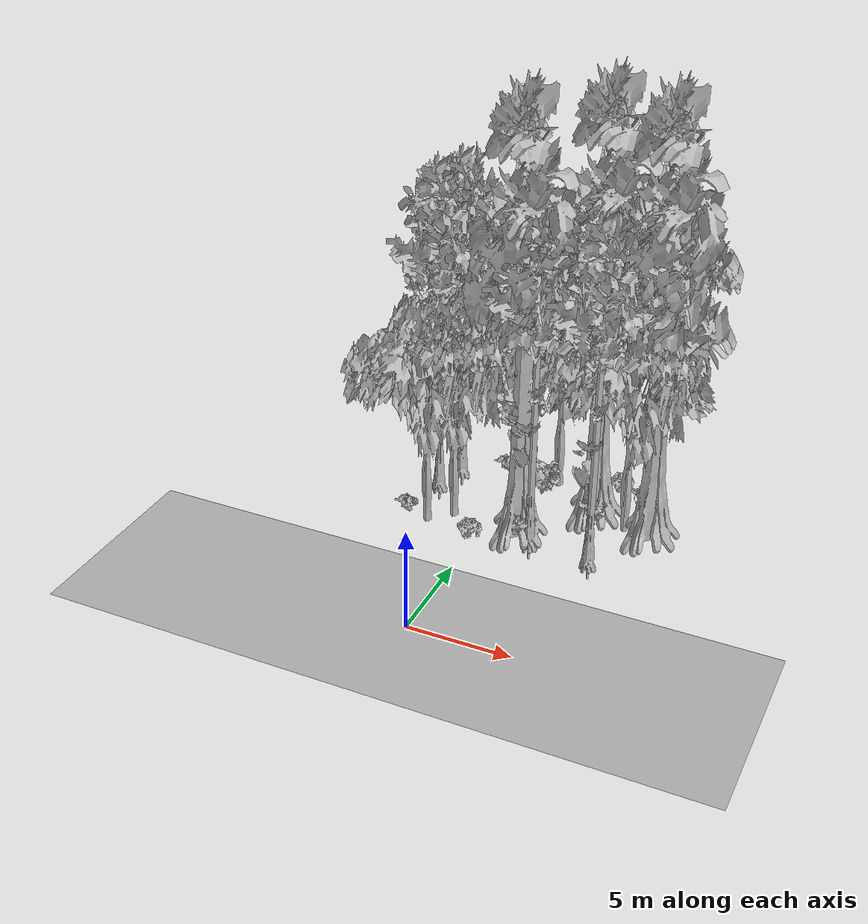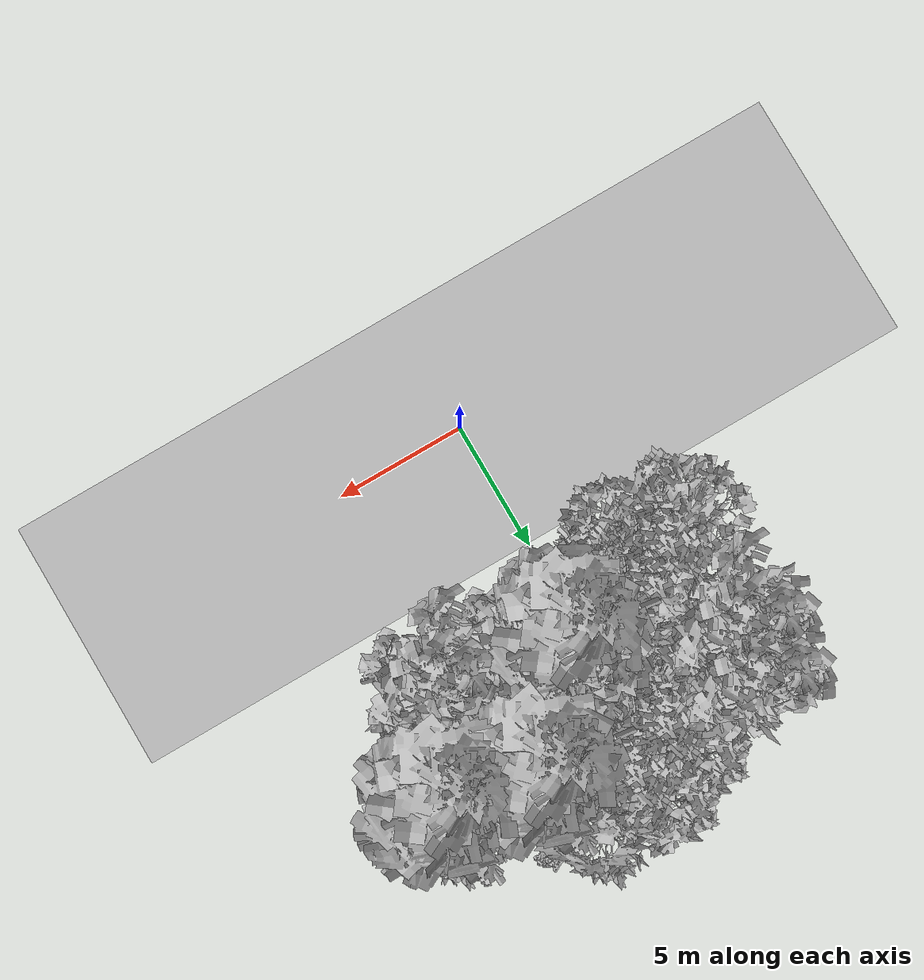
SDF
<sdf version="1.7">
 <world name="default">
  <model name="ground_plane">
   <static>1</static>
   <link name="link">
    <collision name="collision">
     <geometry><plane><normal>0 0 1</normal><size>100 100</size></plane></geometry>
     <surface><contact><ode><min_depth>0.01</min_depth><max_vel>0</max_vel></ode></contact></surface>
    </collision>
    <visual name="grass">
     <cast_shadows>0</cast_shadows>
     <geometry>
      <mesh>
       <scale>0.5814285714285714 0.18142857142857144 0.1</scale>
       <uri>file://grass_plane/meshes/grass_plane.dae</uri>
      </mesh>
     </geometry>
    </visual>
   </link>
  </model>
  <model name="Tree 6">
   <static>1</static>
   <pose>6.165143810758373 11.492331317376358 0 1.57079 -0 0</pose>
   <link name="link">
    <collision name="collision">
     <geometry><mesh><scale>3.5 5 3.5</scale><uri>model://tree_2/meshes/tree_2.obj</uri></mesh></geometry>
    </collision>
    <visual name="visual">
     <geometry><mesh><scale>3.5 5 3.5</scale><uri>model://tree_2/meshes/tree_2.obj</uri></mesh></geometry>
    </visual>
   </link>
  </model>
  <model name="Tree 50">
   <static>1</static>
   <pose>0.19396131883137713 13.168286065146322 0 1.57079 -0 0</pose>
   <link name="link">
    <collision name="collision">
     <geometry><mesh><scale>3.5 5 3.5</scale><uri>model://tree_2/meshes/tree_2.obj</uri></mesh></geometry>
    </collision>
    <visual name="visual">
     <geometry><mesh><scale>3.5 5 3.5</scale><uri>model://tree_2/meshes/tree_2.obj</uri></mesh></geometry>
    </visual>
   </link>
  </model>
  <model name="Tree 56">
   <static>1</static>
   <pose>1.5719434874022795 9.17597408883221 0 1.57079 -0 0</pose>
   <link name="link">
    <collision name="collision">
     <geometry><mesh><scale>3.5 5 3.5</scale><uri>model://tree_4/meshes/tree_4.obj</uri></mesh></geometry>
    </collision>
    <visual name="visual">
     <geometry><mesh><scale>3.5 5 3.5</scale><uri>model://tree_4/meshes/tree_4.obj</uri></mesh></geometry>
    </visual>
   </link>
  </model>
  <model name="Tree 111">
   <static>1</static>
   <pose>4.378610820480233 12.344323079256 0 1.57079 -0 0</pose>
   <link name="link">
    <collision name="collision">
     <geometry><mesh><scale>3.5 5 3.5</scale><uri>model://tree_4/meshes/tree_4.obj</uri></mesh></geometry>
    </collision>
    <visual name="visual">
     <geometry><mesh><scale>3.5 5 3.5</scale><uri>model://tree_4/meshes/tree_4.obj</uri></mesh></geometry>
    </visual>
   </link>
  </model>
  <model name="Tree 117">
   <static>1</static>
   <pose>-2.8668720067677143 8.153926648581976 0 1.57079 -0 0</pose>
   <link name="link">
    <collision name="collision">
     <geometry><mesh><scale>3.5 5 3.5</scale><uri>model://tree_2/meshes/tree_2.obj</uri></mesh></geometry>
    </collision>
    <visual name="visual">
     <geometry><mesh><scale>3.5 5 3.5</scale><uri>model://tree_2/meshes/tree_2.obj</uri></mesh></geometry>
    </visual>
   </link>
  </model>
  <model name="Tree 160">
   <static>1</static>
   <pose>1.8239788463064386 14.008226290433981 0 1.57079 -0 0</pose>
   <link name="link">
    <collision name="collision">
     <geometry><mesh><scale>3.5 5 3.5</scale><uri>model://tree_2/meshes/tree_2.obj</uri></mesh></geometry>
    </collision>
    <visual name="visual">
     <geometry><mesh><scale>3.5 5 3.5</scale><uri>model://tree_2/meshes/tree_2.obj</uri></mesh></geometry>
    </visual>
   </link>
  </model>
  <model name="Tree 183">
   <static>1</static>
   <pose>2.414252139361423 8.638411806548078 0 1.57079 -0 0</pose>
   <link name="link">
    <collision name="collision">
     <geometry><mesh><scale>3.5 5 3.5</scale><uri>model://tree_9/meshes/tree_9.obj</uri></mesh></geometry>
    </collision>
    <visual name="visual">
     <geometry><mesh><scale>3.5 5 3.5</scale><uri>model://tree_9/meshes/tree_9.obj</uri></mesh></geometry>
    </visual>
   </link>
  </model>
  <model name="Tree 213">
   <static>1</static>
   <pose>-1.8617815127181103 9.124975897277757 0 1.57079 -0 0</pose>
   <link name="link">
    <collision name="collision">
     <geometry><mesh><scale>3.5 5 3.5</scale><uri>model://tree_2/meshes/tree_2.obj</uri></mesh></geometry>
    </collision>
    <visual name="visual">
     <geometry><mesh><scale>3.5 5 3.5</scale><uri>model://tree_2/meshes/tree_2.obj</uri></mesh></geometry>
    </visual>
   </link>
  </model>
  <model name="Tree 223">
   <static>1</static>
   <pose>-3.708815782915451 11.64833055335297 0 1.57079 -0 0</pose>
   <link name="link">
    <collision name="collision">
     <geometry><mesh><scale>3.5 5 3.5</scale><uri>model://tree_9/meshes/tree_9.obj</uri></mesh></geometry>
    </collision>
    <visual name="visual">
     <geometry><mesh><scale>3.5 5 3.5</scale><uri>model://tree_9/meshes/tree_9.obj</uri></mesh></geometry>
    </visual>
   </link>
  </model>
  <model name="Tree 265">
   <static>1</static>
   <pose>5.53132889797498 8.312477120802836 0 1.57079 -0 0</pose>
   <link name="link">
    <collision name="collision">
     <geometry><mesh><scale>3.5 5 3.5</scale><uri>model://tree_9/meshes/tree_9.obj</uri></mesh></geometry>
    </collision>
    <visual name="visual">
     <geometry><mesh><scale>3.5 5 3.5</scale><uri>model://tree_9/meshes/tree_9.obj</uri></mesh></geometry>
    </visual>
   </link>
  </model>
  <model name="Tree 284">
   <static>1</static>
   <pose>-3.2075167687228188 13.37818816974535 0 1.57079 -0 0</pose>
   <link name="link">
    <collision name="collision">
     <geometry><mesh><scale>3.5 5 3.5</scale><uri>model://tree_9/meshes/tree_9.obj</uri></mesh></geometry>
    </collision>
    <visual name="visual">
     <geometry><mesh><scale>3.5 5 3.5</scale><uri>model://tree_9/meshes/tree_9.obj</uri></mesh></geometry>
    </visual>
   </link>
  </model>
  <model name="Tree 297">
   <static>1</static>
   <pose>7.429676391071908 11.633359537498553 0 1.57079 -0 0</pose>
   <link name="link">
    <collision name="collision">
     <geometry><mesh><scale>3.5 5 3.5</scale><uri>model://tree_4/meshes/tree_4.obj</uri></mesh></geometry>
    </collision>
    <visual name="visual">
     <geometry><mesh><scale>3.5 5 3.5</scale><uri>model://tree_4/meshes/tree_4.obj</uri></mesh></geometry>
    </visual>
   </link>
  </model>
  <model name="Tree 368">
   <static>1</static>
   <pose>1.608180406392563 10.152289857924394 0 1.57079 -0 0</pose>
   <link name="link">
    <collision name="collision">
     <geometry><mesh><scale>3.5 5 3.5</scale><uri>model://tree_9/meshes/tree_9.obj</uri></mesh></geometry>
    </collision>
    <visual name="visual">
     <geometry><mesh><scale>3.5 5 3.5</scale><uri>model://tree_9/meshes/tree_9.obj</uri></mesh></geometry>
    </visual>
   </link>
  </model>
  <model name="Bush 42">
   <static>1</static>
   <pose>-4.3160797910217 9.036459433127195 0 1.57079 -0 0</pose>
   <link name="link">
    <collision name="collision">
     <geometry><mesh><scale>2 2 2</scale><uri>model://bush_2/meshes/bush_2.obj</uri></mesh></geometry>
     <surface><contact><collide_without_contact>false</collide_without_contact></contact></surface>
    </collision>
    <visual name="visual">
     <geometry><mesh><scale>2 2 2</scale><uri>model://bush_2/meshes/bush_2.obj</uri></mesh></geometry>
    </visual>
   </link>
  </model>
  <model name="Bush 60">
   <static>1</static>
   <pose>2.1367809169810243 8.63911540187296 0 1.57079 -0 0</pose>
   <link name="link">
    <collision name="collision">
     <geometry><mesh><scale>2 2 2</scale><uri>model://bush_0/meshes/bush_0.obj</uri></mesh></geometry>
     <surface><contact><collide_without_contact>false</collide_without_contact></contact></surface>
    </collision>
    <visual name="visual">
     <geometry><mesh><scale>2 2 2</scale><uri>model://bush_0/meshes/bush_0.obj</uri></mesh></geometry>
    </visual>
   </link>
  </model>
  <model name="Bush 73">
   <static>1</static>
   <pose>-1.2604030590704909 14.731267248029297 0 1.57079 -0 0</pose>
   <link name="link">
    <collision name="collision">
     <geometry><mesh><scale>2 2 2</scale><uri>model://bush_2/meshes/bush_2.obj</uri></mesh></geometry>
     <surface><contact><collide_without_contact>false</collide_without_contact></contact></surface>
    </collision>
    <visual name="visual">
     <geometry><mesh><scale>2 2 2</scale><uri>model://bush_2/meshes/bush_2.obj</uri></mesh></geometry>
    </visual>
   </link>
  </model>
  <model name="Bush 91">
   <static>1</static>
   <pose>1.6180840834829482 9.096367078068283 0 1.57079 -0 0</pose>
   <link name="link">
    <collision name="collision">
     <geometry><mesh><scale>2 2 2</scale><uri>model://bush_3/meshes/bush_3.obj</uri></mesh></geometry>
     <surface><contact><collide_without_contact>false</collide_without_contact></contact></surface>
    </collision>
    <visual name="visual">
     <geometry><mesh><scale>2 2 2</scale><uri>model://bush_3/meshes/bush_3.obj</uri></mesh></geometry>
    </visual>
   </link>
  </model>
  <model name="Bush 100">
   <static>1</static>
   <pose>6.437962539730577 13.788023595402354 0 1.57079 -0 0</pose>
   <link name="link">
    <collision name="collision">
     <geometry><mesh><scale>2 2 2</scale><uri>model://bush_4/meshes/bush_4.obj</uri></mesh></geometry>
     <surface><contact><collide_without_contact>false</collide_without_contact></contact></surface>
    </collision>
    <visual name="visual">
     <geometry><mesh><scale>2 2 2</scale><uri>model://bush_4/meshes/bush_4.obj</uri></mesh></geometry>
    </visual>
   </link>
  </model>
  <model name="Bush 127">
   <static>1</static>
   <pose>-0.3071149284189403 7.827390242873076 0 1.57079 -0 0</pose>
   <link name="link">
    <collision name="collision">
     <geometry><mesh><scale>2 2 2</scale><uri>model://bush_3/meshes/bush_3.obj</uri></mesh></geometry>
     <surface><contact><collide_without_contact>false</collide_without_contact></contact></surface>
    </collision>
    <visual name="visual">
     <geometry><mesh><scale>2 2 2</scale><uri>model://bush_3/meshes/bush_3.obj</uri></mesh></geometry>
    </visual>
   </link>
  </model>
  <model name="Bush 128">
   <static>1</static>
   <pose>4.7948080200079914 11.282925944660605 0 1.57079 -0 0</pose>
   <link name="link">
    <collision name="collision">
     <geometry><mesh><scale>2 2 2</scale><uri>model://bush_0/meshes/bush_0.obj</uri></mesh></geometry>
     <surface><contact><collide_without_contact>false</collide_without_contact></contact></surface>
    </collision>
    <visual name="visual">
     <geometry><mesh><scale>2 2 2</scale><uri>model://bush_0/meshes/bush_0.obj</uri></mesh></geometry>
    </visual>
   </link>
  </model>
  <model name="Bush 307">
   <static>1</static>
   <pose>5.034352208996154 14.9961611413015 0 1.57079 -0 0</pose>
   <link name="link">
    <collision name="collision">
     <geometry><mesh><scale>2 2 2</scale><uri>model://bush_3/meshes/bush_3.obj</uri></mesh></geometry>
     <surface><contact><collide_without_contact>false</collide_without_contact></contact></surface>
    </collision>
    <visual name="visual">
     <geometry><mesh><scale>2 2 2</scale><uri>model://bush_3/meshes/bush_3.obj</uri></mesh></geometry>
    </visual>
   </link>
  </model>
  <model name="Bush 315">
   <static>1</static>
   <pose>1.4486437855488816 12.789448326313558 0 1.57079 -0 0</pose>
   <link name="link">
    <collision name="collision">
     <geometry><mesh><scale>2 2 2</scale><uri>model://bush_1/meshes/bush_1.obj</uri></mesh></geometry>
     <surface><contact><collide_without_contact>false</collide_without_contact></contact></surface>
    </collision>
    <visual name="visual">
     <geometry><mesh><scale>2 2 2</scale><uri>model://bush_1/meshes/bush_1.obj</uri></mesh></geometry>
    </visual>
   </link>
  </model>
 </world>
</sdf>
